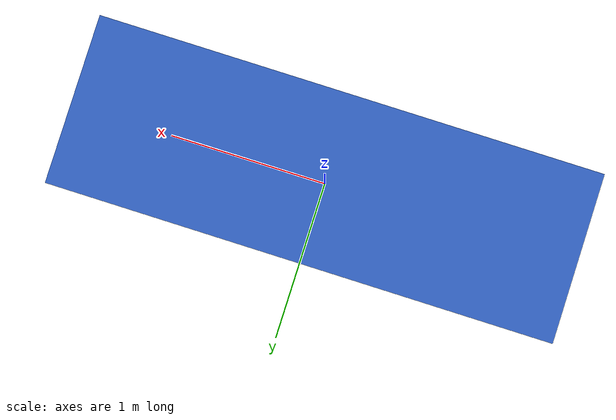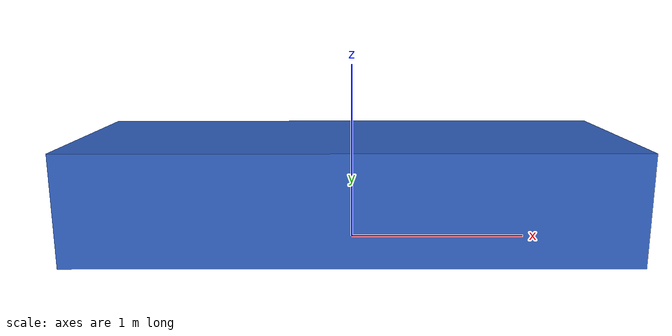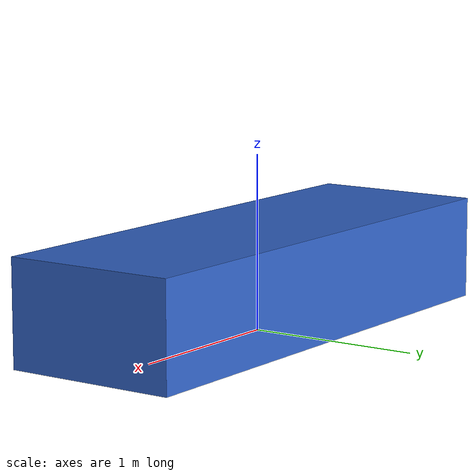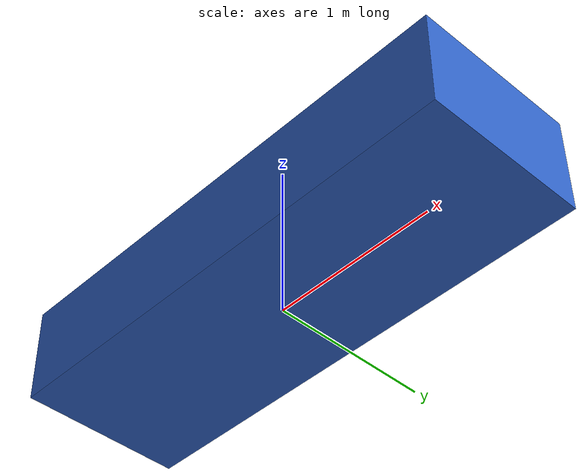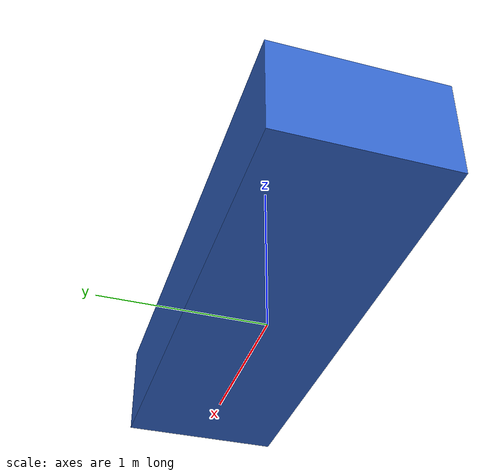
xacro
<?xml version="1.0"?>
<robot xmlns:xacro="http://ros.org/wiki/xacro" name="scale_igv">
  <!-- Define vehicle parameters -->
  <xacro:property name="vehicle_length" value="3.0"/>
  <xacro:property name="vehicle_width" value="1.0"/>
  <xacro:property name="vehicle_height" value="0.6"/>
  <xacro:property name="wheel_base" value="2.0"/>
  <xacro:property name="wheel_radius" value="0.15"/>
  <xacro:property name="wheel_width" value="0.1"/>

  <!-- vehicle body -->
  <!-- base_link is at vehicle center (like igv_vehicle) for consistent goal reaching behavior -->
  <link name="base_link">
    <visual>
      <origin xyz="0 0 ${vehicle_height/2}" rpy="0 0 0"/>
      <geometry>
        <box size="${vehicle_length} ${vehicle_width} ${vehicle_height}"/>
      </geometry>
      <material name="blue">
        <color rgba="0.2 0.4 0.8 1.0"/>
      </material>
    </visual>
    <collision>
      <origin xyz="0 0 ${vehicle_height/2}" rpy="0 0 0"/>
      <geometry>
        <box size="${vehicle_length} ${vehicle_width} ${vehicle_height}"/>
      </geometry>
    </collision>
  </link>

  <!-- Front left wheel -->
  <link name="front_left_wheel">
    <visual>
      <origin xyz="0 0 0" rpy="${pi/2} 0 0"/>
      <geometry>
        <cylinder radius="${wheel_radius}" length="${wheel_width}"/>
      </geometry>
      <material name="black">
        <color rgba="0.1 0.1 0.1 1.0"/>
      </material>
    </visual>
  </link>
  <joint name="front_left_wheel_joint" type="fixed">
    <parent link="base_link"/>
    <child link="front_left_wheel"/>
    <origin xyz="${wheel_base/2} 0.4 ${wheel_radius}" rpy="0 0 0"/>
  </joint>

  <!-- Front right wheel -->
  <link name="front_right_wheel">
    <visual>
      <origin xyz="0 0 0" rpy="${pi/2} 0 0"/>
      <geometry>
        <cylinder radius="${wheel_radius}" length="${wheel_width}"/>
      </geometry>
      <material name="black">
        <color rgba="0.1 0.1 0.1 1.0"/>
      </material>
    </visual>
  </link>
  <joint name="front_right_wheel_joint" type="fixed">
    <parent link="base_link"/>
    <child link="front_right_wheel"/>
    <origin xyz="${wheel_base/2} -0.4 ${wheel_radius}" rpy="0 0 0"/>
  </joint>

  <!-- Rear left wheel -->
  <link name="rear_left_wheel">
    <visual>
      <origin xyz="0 0 0" rpy="${pi/2} 0 0"/>
      <geometry>
        <cylinder radius="${wheel_radius}" length="${wheel_width}"/>
      </geometry>
      <material name="black">
        <color rgba="0.1 0.1 0.1 1.0"/>
      </material>
    </visual>
  </link>
  <joint name="rear_left_wheel_joint" type="fixed">
    <parent link="base_link"/>
    <child link="rear_left_wheel"/>
    <origin xyz="${-wheel_base/2} 0.4 ${wheel_radius}" rpy="0 0 0"/>
  </joint>

  <!-- Rear right wheel -->
  <link name="rear_right_wheel">
    <visual>
      <origin xyz="0 0 0" rpy="${pi/2} 0 0"/>
      <geometry>
        <cylinder radius="${wheel_radius}" length="${wheel_width}"/>
      </geometry>
      <material name="black">
        <color rgba="0.1 0.1 0.1 1.0"/>
      </material>
    </visual>
  </link>
  <joint name="rear_right_wheel_joint" type="fixed">
    <parent link="base_link"/>
    <child link="rear_right_wheel"/>
    <origin xyz="${-wheel_base/2} -0.4 ${wheel_radius}" rpy="0 0 0"/>
  </joint>
</robot>
